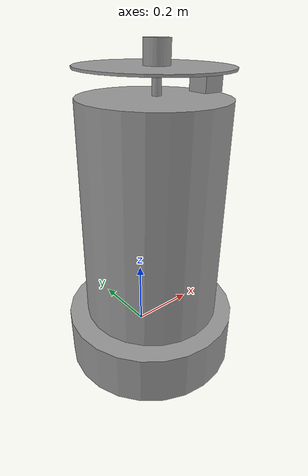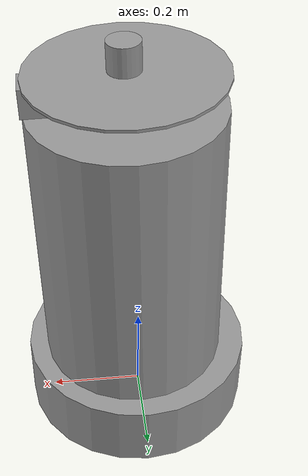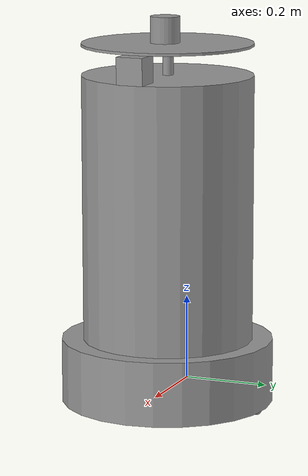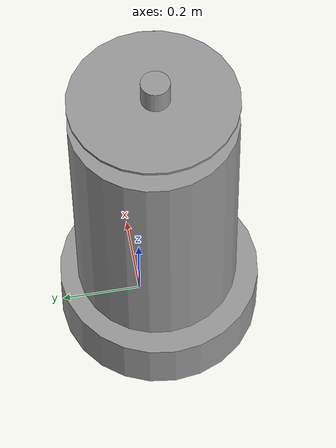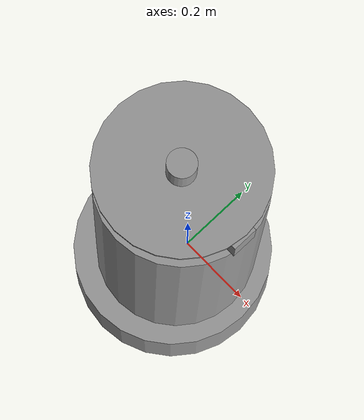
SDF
<?xml version='1.0'?>
<sdf version='1.7'>
  <model name='MapperBotConceptBase'>
    <link name='link_0'>
      <inertial>
        <mass>1</mass>
        <inertia>
          <ixx>0.0180645</ixx>
          <ixy>0</ixy>
          <ixz>0</ixz>
          <iyy>0.0180645</iyy>
          <iyz>0</iyz>
          <izz>0.032258</izz>
        </inertia>
        <pose>0 0 0 0 -0 0</pose>
      </inertial>
      <pose>-0.001605 -0.051689 0.019205 0 -0 0</pose>
      <gravity>1</gravity>
      <self_collide>0</self_collide>
      <kinematic>0</kinematic>
      <enable_wind>0</enable_wind>
      <visual name='visual'>
        <pose>0 0 0 0 -0 0</pose>
        <geometry>
          <cylinder>
            <radius>0.254</radius>
            <length>0.1524</length>
          </cylinder>
        </geometry>
        <material>
          <lighting>1</lighting>
          <script>
            <uri>file://media/materials/scripts/gazebo.material</uri>
            <name>Gazebo/Grey</name>
          </script>
          <shader type='pixel'>
            <normal_map>__default__</normal_map>
          </shader>
          <ambient>0.3 0.3 0.3 1</ambient>
          <diffuse>0.7 0.7 0.7 1</diffuse>
          <specular>0.01 0.01 0.01 1</specular>
          <emissive>0 0 0 1</emissive>
        </material>
        <transparency>0</transparency>
        <cast_shadows>1</cast_shadows>
      </visual>
      <collision name='collision'>
        <laser_retro>0</laser_retro>
        <max_contacts>10</max_contacts>
        <pose>0 0 0 0 -0 0</pose>
        <geometry>
          <cylinder>
            <radius>0.254</radius>
            <length>0.1524</length>
          </cylinder>
        </geometry>
        <surface>
          <friction>
            <ode>
              <mu>1</mu>
              <mu2>1</mu2>
              <fdir1>0 0 0</fdir1>
              <slip1>0</slip1>
              <slip2>0</slip2>
            </ode>
            <torsional>
              <coefficient>1</coefficient>
              <patch_radius>0</patch_radius>
              <surface_radius>0</surface_radius>
              <use_patch_radius>1</use_patch_radius>
              <ode>
                <slip>0</slip>
              </ode>
            </torsional>
          </friction>
          <bounce>
            <restitution_coefficient>0</restitution_coefficient>
            <threshold>1e+06</threshold>
          </bounce>
          <contact>
            <collide_without_contact>0</collide_without_contact>
            <collide_without_contact_bitmask>1</collide_without_contact_bitmask>
            <collide_bitmask>1</collide_bitmask>
            <ode>
              <soft_cfm>0</soft_cfm>
              <soft_erp>0.2</soft_erp>
              <kp>1e+13</kp>
              <kd>1</kd>
              <max_vel>0.01</max_vel>
              <min_depth>0</min_depth>
            </ode>
            <bullet>
              <split_impulse>1</split_impulse>
              <split_impulse_penetration_threshold>-0.01</split_impulse_penetration_threshold>
              <soft_cfm>0</soft_cfm>
              <soft_erp>0.2</soft_erp>
              <kp>1e+13</kp>
              <kd>1</kd>
            </bullet>
          </contact>
        </surface>
      </collision>
    </link>
    <link name='link_0_0'>
      <inertial>
        <mass>0.00461805</mass>
        <inertia>
          <ixx>1.281e-05</ixx>
          <ixy>0</ixy>
          <ixz>0</ixz>
          <iyy>1.281e-05</iyy>
          <iyz>0</iyz>
          <izz>1.281e-05</izz>
        </inertia>
        <pose>0 0 0 0 -0 0</pose>
      </inertial>
      <pose>-0.166726 -0.045065 0.012807 0.000165 0.058306 -0.025085</pose>
      <gravity>1</gravity>
      <self_collide>0</self_collide>
      <kinematic>0</kinematic>
      <enable_wind>0</enable_wind>
      <visual name='visual'>
        <pose>0 0 0 0 -0 0</pose>
        <geometry>
          <sphere>
            <radius>0.0832668</radius>
          </sphere>
        </geometry>
        <material>
          <lighting>1</lighting>
          <script>
            <uri>file://media/materials/scripts/gazebo.material</uri>
            <name>Gazebo/Grey</name>
          </script>
          <shader type='pixel'>
            <normal_map>__default__</normal_map>
          </shader>
          <ambient>0.3 0.3 0.3 1</ambient>
          <diffuse>0.7 0.7 0.7 1</diffuse>
          <specular>0.01 0.01 0.01 1</specular>
          <emissive>0 0 0 1</emissive>
        </material>
        <transparency>0</transparency>
        <cast_shadows>1</cast_shadows>
      </visual>
      <collision name='collision'>
        <laser_retro>0</laser_retro>
        <max_contacts>10</max_contacts>
        <pose>0 0 0 0 -0 0</pose>
        <geometry>
          <sphere>
            <radius>0.083267</radius>
          </sphere>
        </geometry>
        <surface>
          <friction>
            <ode>
              <mu>1</mu>
              <mu2>1</mu2>
              <fdir1>0 0 0</fdir1>
              <slip1>0</slip1>
              <slip2>0</slip2>
            </ode>
            <torsional>
              <coefficient>1</coefficient>
              <patch_radius>0</patch_radius>
              <surface_radius>0</surface_radius>
              <use_patch_radius>1</use_patch_radius>
              <ode>
                <slip>0</slip>
              </ode>
            </torsional>
          </friction>
          <bounce>
            <restitution_coefficient>0</restitution_coefficient>
            <threshold>1e+06</threshold>
          </bounce>
          <contact>
            <collide_without_contact>0</collide_without_contact>
            <collide_without_contact_bitmask>1</collide_without_contact_bitmask>
            <collide_bitmask>1</collide_bitmask>
            <ode>
              <soft_cfm>0</soft_cfm>
              <soft_erp>0.2</soft_erp>
              <kp>1e+13</kp>
              <kd>1</kd>
              <max_vel>0.01</max_vel>
              <min_depth>0</min_depth>
            </ode>
            <bullet>
              <split_impulse>1</split_impulse>
              <split_impulse_penetration_threshold>-0.01</split_impulse_penetration_threshold>
              <soft_cfm>0</soft_cfm>
              <soft_erp>0.2</soft_erp>
              <kp>1e+13</kp>
              <kd>1</kd>
            </bullet>
          </contact>
        </surface>
      </collision>
    </link>
    <link name='link_0_1'>
      <inertial>
        <mass>0.837169</mass>
        <inertia>
          <ixx>0.0370318</ixx>
          <ixy>0</ixy>
          <ixz>0</ixz>
          <iyy>0.0370318</iyy>
          <iyz>0</iyz>
          <izz>0.0172834</izz>
        </inertia>
        <pose>0 0 0 0 -0 0</pose>
      </inertial>
      <pose>0.012461 -0.044778 0.411634 -0.007668 0.019791 0.007759</pose>
      <gravity>1</gravity>
      <self_collide>0</self_collide>
      <kinematic>0</kinematic>
      <enable_wind>0</enable_wind>
      <visual name='visual'>
        <pose>0 0 0 0 -0 0</pose>
        <geometry>
          <cylinder>
            <radius>0.2032</radius>
            <length>0.637922</length>
          </cylinder>
        </geometry>
        <material>
          <lighting>1</lighting>
          <script>
            <uri>file://media/materials/scripts/gazebo.material</uri>
            <name>Gazebo/Grey</name>
          </script>
          <shader type='pixel'>
            <normal_map>__default__</normal_map>
          </shader>
          <ambient>1 1 1 1</ambient>
          <diffuse>1 1 1 1</diffuse>
          <specular>0.01 0.01 0.01 1</specular>
          <emissive>0 0 0 1</emissive>
        </material>
        <transparency>0</transparency>
        <cast_shadows>1</cast_shadows>
      </visual>
      <collision name='collision'>
        <laser_retro>0</laser_retro>
        <max_contacts>10</max_contacts>
        <pose>0 0 0 0 -0 0</pose>
        <geometry>
          <cylinder>
            <radius>0.2032</radius>
            <length>0.637922</length>
          </cylinder>
        </geometry>
        <surface>
          <friction>
            <ode>
              <mu>1</mu>
              <mu2>1</mu2>
              <fdir1>0 0 0</fdir1>
              <slip1>0</slip1>
              <slip2>0</slip2>
            </ode>
            <torsional>
              <coefficient>1</coefficient>
              <patch_radius>0</patch_radius>
              <surface_radius>0</surface_radius>
              <use_patch_radius>1</use_patch_radius>
              <ode>
                <slip>0</slip>
              </ode>
            </torsional>
          </friction>
          <bounce>
            <restitution_coefficient>0</restitution_coefficient>
            <threshold>1e+06</threshold>
          </bounce>
          <contact>
            <collide_without_contact>0</collide_without_contact>
            <collide_without_contact_bitmask>1</collide_without_contact_bitmask>
            <collide_bitmask>1</collide_bitmask>
            <ode>
              <soft_cfm>0</soft_cfm>
              <soft_erp>0.2</soft_erp>
              <kp>1e+13</kp>
              <kd>1</kd>
              <max_vel>0.01</max_vel>
              <min_depth>0</min_depth>
            </ode>
            <bullet>
              <split_impulse>1</split_impulse>
              <split_impulse_penetration_threshold>-0.01</split_impulse_penetration_threshold>
              <soft_cfm>0</soft_cfm>
              <soft_erp>0.2</soft_erp>
              <kp>1e+13</kp>
              <kd>1</kd>
            </bullet>
          </contact>
        </surface>
      </collision>
    </link>
    <link name='link_0_2'>
      <inertial>
        <mass>1</mass>
        <inertia>
          <ixx>0.145833</ixx>
          <ixy>0</ixy>
          <ixz>0</ixz>
          <iyy>0.145833</iyy>
          <iyz>0</iyz>
          <izz>0.125</izz>
        </inertia>
        <pose>0 0 0 0 -0 0</pose>
      </inertial>
      <pose>0.019026 -0.042306 0.802062 0.008829 0.019605 0.7768</pose>
      <gravity>1</gravity>
      <self_collide>0</self_collide>
      <kinematic>0</kinematic>
      <enable_wind>0</enable_wind>
      <visual name='visual'>
        <pose>0 0 0 0 -0 0</pose>
        <geometry>
          <cylinder>
            <radius>0.2032</radius>
            <length>0.00635</length>
          </cylinder>
        </geometry>
        <material>
          <lighting>1</lighting>
          <script>
            <uri>file://media/materials/scripts/gazebo.material</uri>
            <name>Gazebo/Grey</name>
          </script>
          <shader type='pixel'>
            <normal_map>__default__</normal_map>
          </shader>
          <ambient>1 1 1 1</ambient>
          <diffuse>0.7 0.7 0.7 1</diffuse>
          <specular>0.01 0.01 0.01 1</specular>
          <emissive>0 0 0 1</emissive>
        </material>
        <transparency>0</transparency>
        <cast_shadows>1</cast_shadows>
      </visual>
      <collision name='collision'>
        <laser_retro>0</laser_retro>
        <max_contacts>10</max_contacts>
        <pose>0 0 0 0 -0 0</pose>
        <geometry>
          <cylinder>
            <radius>0.2032</radius>
            <length>0.00635</length>
          </cylinder>
        </geometry>
        <surface>
          <friction>
            <ode>
              <mu>1</mu>
              <mu2>1</mu2>
              <fdir1>0 0 0</fdir1>
              <slip1>0</slip1>
              <slip2>0</slip2>
            </ode>
            <torsional>
              <coefficient>1</coefficient>
              <patch_radius>0</patch_radius>
              <surface_radius>0</surface_radius>
              <use_patch_radius>1</use_patch_radius>
              <ode>
                <slip>0</slip>
              </ode>
            </torsional>
          </friction>
          <bounce>
            <restitution_coefficient>0</restitution_coefficient>
            <threshold>1e+06</threshold>
          </bounce>
          <contact>
            <collide_without_contact>0</collide_without_contact>
            <collide_without_contact_bitmask>1</collide_without_contact_bitmask>
            <collide_bitmask>1</collide_bitmask>
            <ode>
              <soft_cfm>0</soft_cfm>
              <soft_erp>0.2</soft_erp>
              <kp>1e+13</kp>
              <kd>1</kd>
              <max_vel>0.01</max_vel>
              <min_depth>0</min_depth>
            </ode>
            <bullet>
              <split_impulse>1</split_impulse>
              <split_impulse_penetration_threshold>-0.01</split_impulse_penetration_threshold>
              <soft_cfm>0</soft_cfm>
              <soft_erp>0.2</soft_erp>
              <kp>1e+13</kp>
              <kd>1</kd>
            </bullet>
          </contact>
        </surface>
      </collision>
    </link>
    <link name='link_0_3'>
      <inertial>
        <mass>1</mass>
        <inertia>
          <ixx>0.145833</ixx>
          <ixy>0</ixy>
          <ixz>0</ixz>
          <iyy>0.145833</iyy>
          <iyz>0</iyz>
          <izz>0.125</izz>
        </inertia>
        <pose>0 0 0 0 -0 0</pose>
      </inertial>
      <pose>0.022269 -0.047603 0.835541 -0.005274 0.021336 0.074371</pose>
      <gravity>1</gravity>
      <self_collide>0</self_collide>
      <kinematic>0</kinematic>
      <enable_wind>0</enable_wind>
      <visual name='visual'>
        <pose>0 0 0 0 -0 0</pose>
        <geometry>
          <cylinder>
            <radius>0.034925</radius>
            <length>0.0635</length>
          </cylinder>
        </geometry>
        <material>
          <lighting>1</lighting>
          <script>
            <uri>file://media/materials/scripts/gazebo.material</uri>
            <name>Gazebo/Grey</name>
          </script>
          <shader type='pixel'>
            <normal_map>__default__</normal_map>
          </shader>
          <ambient>0.3 0.3 0.3 1</ambient>
          <diffuse>0.7 0.7 0.7 1</diffuse>
          <specular>0.01 0.01 0.01 1</specular>
          <emissive>0 0 0 1</emissive>
        </material>
        <transparency>0</transparency>
        <cast_shadows>1</cast_shadows>
      </visual>
      <collision name='collision'>
        <laser_retro>0</laser_retro>
        <max_contacts>10</max_contacts>
        <pose>0 0 0 0 -0 0</pose>
        <geometry>
          <cylinder>
            <radius>0.034925</radius>
            <length>0.0635</length>
          </cylinder>
        </geometry>
        <surface>
          <friction>
            <ode>
              <mu>1</mu>
              <mu2>1</mu2>
              <fdir1>0 0 0</fdir1>
              <slip1>0</slip1>
              <slip2>0</slip2>
            </ode>
            <torsional>
              <coefficient>1</coefficient>
              <patch_radius>0</patch_radius>
              <surface_radius>0</surface_radius>
              <use_patch_radius>1</use_patch_radius>
              <ode>
                <slip>0</slip>
              </ode>
            </torsional>
          </friction>
          <bounce>
            <restitution_coefficient>0</restitution_coefficient>
            <threshold>1e+06</threshold>
          </bounce>
          <contact>
            <collide_without_contact>0</collide_without_contact>
            <collide_without_contact_bitmask>1</collide_without_contact_bitmask>
            <collide_bitmask>1</collide_bitmask>
            <ode>
              <soft_cfm>0</soft_cfm>
              <soft_erp>0.2</soft_erp>
              <kp>1e+13</kp>
              <kd>1</kd>
              <max_vel>0.01</max_vel>
              <min_depth>0</min_depth>
            </ode>
            <bullet>
              <split_impulse>1</split_impulse>
              <split_impulse_penetration_threshold>-0.01</split_impulse_penetration_threshold>
              <soft_cfm>0</soft_cfm>
              <soft_erp>0.2</soft_erp>
              <kp>1e+13</kp>
              <kd>1</kd>
            </bullet>
          </contact>
        </surface>
      </collision>
    </link>
    <link name='link_1'>
      <inertial>
        <mass>1</mass>
        <inertia>
          <ixx>0.145833</ixx>
          <ixy>0</ixy>
          <ixz>0</ixz>
          <iyy>0.145833</iyy>
          <iyz>0</iyz>
          <izz>0.125</izz>
        </inertia>
        <pose>0 0 0 0 -0 0</pose>
      </inertial>
      <pose>0.001605 0.061689 -0.019205 -1.58301 0 0</pose>
      <gravity>1</gravity>
      <self_collide>0</self_collide>
      <kinematic>0</kinematic>
      <enable_wind>0</enable_wind>
      <visual name='visual'>
        <pose>0 0 0.1 0 -0 0</pose>
        <geometry>
          <cylinder>
            <radius>0.0508</radius>
            <length>0.0508</length>
          </cylinder>
        </geometry>
        <material>
          <lighting>1</lighting>
          <script>
            <uri>file://media/materials/scripts/gazebo.material</uri>
            <name>Gazebo/Grey</name>
          </script>
          <shader type='pixel'>
            <normal_map>__default__</normal_map>
          </shader>
          <ambient>0.3 0.3 0.3 1</ambient>
          <diffuse>0.7 0.7 0.7 1</diffuse>
          <specular>0.01 0.01 0.01 1</specular>
          <emissive>0 0 0 1</emissive>
        </material>
        <transparency>0</transparency>
        <cast_shadows>1</cast_shadows>
      </visual>
      <collision name='collision'>
        <laser_retro>0</laser_retro>
        <max_contacts>10</max_contacts>
        <pose>0 0 0.1 0 -0 0</pose>
        <geometry>
          <cylinder>
            <radius>0.0508</radius>
            <length>0.0508</length>
          </cylinder>
        </geometry>
        <surface>
          <friction>
            <ode>
              <mu>1</mu>
              <mu2>1</mu2>
              <fdir1>0 0 0</fdir1>
              <slip1>0</slip1>
              <slip2>0</slip2>
            </ode>
            <torsional>
              <coefficient>1</coefficient>
              <patch_radius>0</patch_radius>
              <surface_radius>0</surface_radius>
              <use_patch_radius>1</use_patch_radius>
              <ode>
                <slip>0</slip>
              </ode>
            </torsional>
          </friction>
          <bounce>
            <restitution_coefficient>0</restitution_coefficient>
            <threshold>1e+06</threshold>
          </bounce>
          <contact>
            <collide_without_contact>0</collide_without_contact>
            <collide_without_contact_bitmask>1</collide_without_contact_bitmask>
            <collide_bitmask>1</collide_bitmask>
            <ode>
              <soft_cfm>0</soft_cfm>
              <soft_erp>0.2</soft_erp>
              <kp>1e+13</kp>
              <kd>1</kd>
              <max_vel>0.01</max_vel>
              <min_depth>0</min_depth>
            </ode>
            <bullet>
              <split_impulse>1</split_impulse>
              <split_impulse_penetration_threshold>-0.01</split_impulse_penetration_threshold>
              <soft_cfm>0</soft_cfm>
              <soft_erp>0.2</soft_erp>
              <kp>1e+13</kp>
              <kd>1</kd>
            </bullet>
          </contact>
        </surface>
      </collision>
    </link>
    <link name='link_1_0'>
      <inertial>
        <mass>1</mass>
        <inertia>
          <ixx>0.1</ixx>
          <ixy>0</ixy>
          <ixz>0</ixz>
          <iyy>0.1</iyy>
          <iyz>0</iyz>
          <izz>0.1</izz>
        </inertia>
        <pose>0 0 0 0 -0 0</pose>
      </inertial>
      <pose>0.161614 -0.052212 0.006595 0.000165 0.058306 -0.025085</pose>
      <gravity>1</gravity>
      <self_collide>0</self_collide>
      <kinematic>0</kinematic>
      <enable_wind>0</enable_wind>
      <visual name='visual'>
        <pose>0 0 0 0 -0 0</pose>
        <geometry>
          <sphere>
            <radius>0.083267</radius>
          </sphere>
        </geometry>
        <material>
          <lighting>1</lighting>
          <script>
            <uri>file://media/materials/scripts/gazebo.material</uri>
            <name>Gazebo/Grey</name>
          </script>
          <shader type='pixel'>
            <normal_map>__default__</normal_map>
          </shader>
          <ambient>0.3 0.3 0.3 1</ambient>
          <diffuse>0.7 0.7 0.7 1</diffuse>
          <specular>0.01 0.01 0.01 1</specular>
          <emissive>0 0 0 1</emissive>
        </material>
        <transparency>0</transparency>
        <cast_shadows>1</cast_shadows>
      </visual>
      <collision name='collision'>
        <laser_retro>0</laser_retro>
        <max_contacts>10</max_contacts>
        <pose>0 0 0 0 -0 0</pose>
        <geometry>
          <sphere>
            <radius>0.083267</radius>
          </sphere>
        </geometry>
        <surface>
          <friction>
            <ode>
              <mu>1</mu>
              <mu2>1</mu2>
              <fdir1>0 0 0</fdir1>
              <slip1>0</slip1>
              <slip2>0</slip2>
            </ode>
            <torsional>
              <coefficient>1</coefficient>
              <patch_radius>0</patch_radius>
              <surface_radius>0</surface_radius>
              <use_patch_radius>1</use_patch_radius>
              <ode>
                <slip>0</slip>
              </ode>
            </torsional>
          </friction>
          <bounce>
            <restitution_coefficient>0</restitution_coefficient>
            <threshold>1e+06</threshold>
          </bounce>
          <contact>
            <collide_without_contact>0</collide_without_contact>
            <collide_without_contact_bitmask>1</collide_without_contact_bitmask>
            <collide_bitmask>1</collide_bitmask>
            <ode>
              <soft_cfm>0</soft_cfm>
              <soft_erp>0.2</soft_erp>
              <kp>1e+13</kp>
              <kd>1</kd>
              <max_vel>0.01</max_vel>
              <min_depth>0</min_depth>
            </ode>
            <bullet>
              <split_impulse>1</split_impulse>
              <split_impulse_penetration_threshold>-0.01</split_impulse_penetration_threshold>
              <soft_cfm>0</soft_cfm>
              <soft_erp>0.2</soft_erp>
              <kp>1e+13</kp>
              <kd>1</kd>
            </bullet>
          </contact>
        </surface>
      </collision>
    </link>
    <link name='link_1_1'>
      <inertial>
        <mass>1</mass>
        <inertia>
          <ixx>0.145833</ixx>
          <ixy>0</ixy>
          <ixz>0</ixz>
          <iyy>0.145833</iyy>
          <iyz>0</iyz>
          <izz>0.125</izz>
        </inertia>
        <pose>0 0 0 0 -0 0</pose>
      </inertial>
      <pose>0.03166 -0.036306 0.769704 0.008829 0.019605 0.7768</pose>
      <gravity>1</gravity>
      <self_collide>0</self_collide>
      <kinematic>0</kinematic>
      <enable_wind>0</enable_wind>
      <visual name='visual'>
        <pose>0 0 0 0 -0 0</pose>
        <geometry>
          <cylinder>
            <radius>0.0127</radius>
            <length>0.0762</length>
          </cylinder>
        </geometry>
        <material>
          <lighting>1</lighting>
          <script>
            <uri>file://media/materials/scripts/gazebo.material</uri>
            <name>Gazebo/Grey</name>
          </script>
          <shader type='pixel'>
            <normal_map>__default__</normal_map>
          </shader>
          <ambient>0.3 0.3 0.3 1</ambient>
          <diffuse>0.7 0.7 0.7 1</diffuse>
          <specular>0.01 0.01 0.01 1</specular>
          <emissive>0 0 0 1</emissive>
        </material>
        <transparency>0</transparency>
        <cast_shadows>1</cast_shadows>
      </visual>
      <collision name='collision'>
        <laser_retro>0</laser_retro>
        <max_contacts>10</max_contacts>
        <pose>0 0 0 0 -0 0</pose>
        <geometry>
          <cylinder>
            <radius>0.0127</radius>
            <length>0.0762</length>
          </cylinder>
        </geometry>
        <surface>
          <friction>
            <ode>
              <mu>1</mu>
              <mu2>1</mu2>
              <fdir1>0 0 0</fdir1>
              <slip1>0</slip1>
              <slip2>0</slip2>
            </ode>
            <torsional>
              <coefficient>1</coefficient>
              <patch_radius>0</patch_radius>
              <surface_radius>0</surface_radius>
              <use_patch_radius>1</use_patch_radius>
              <ode>
                <slip>0</slip>
              </ode>
            </torsional>
          </friction>
          <bounce>
            <restitution_coefficient>0</restitution_coefficient>
            <threshold>1e+06</threshold>
          </bounce>
          <contact>
            <collide_without_contact>0</collide_without_contact>
            <collide_without_contact_bitmask>1</collide_without_contact_bitmask>
            <collide_bitmask>1</collide_bitmask>
            <ode>
              <soft_cfm>0</soft_cfm>
              <soft_erp>0.2</soft_erp>
              <kp>1e+13</kp>
              <kd>1</kd>
              <max_vel>0.01</max_vel>
              <min_depth>0</min_depth>
            </ode>
            <bullet>
              <split_impulse>1</split_impulse>
              <split_impulse_penetration_threshold>-0.01</split_impulse_penetration_threshold>
              <soft_cfm>0</soft_cfm>
              <soft_erp>0.2</soft_erp>
              <kp>1e+13</kp>
              <kd>1</kd>
            </bullet>
          </contact>
        </surface>
      </collision>
    </link>
    <link name='link_1_clone'>
      <inertial>
        <mass>1</mass>
        <inertia>
          <ixx>0.145833</ixx>
          <ixy>0</ixy>
          <ixz>0</ixz>
          <iyy>0.145833</iyy>
          <iyz>0</iyz>
          <izz>0.125</izz>
        </inertia>
        <pose>0 0 0 0 -0 0</pose>
      </inertial>
      <pose>-0.003507 -0.266346 -0.02078 1.55659 -0 0</pose>
      <gravity>1</gravity>
      <self_collide>0</self_collide>
      <kinematic>0</kinematic>
      <enable_wind>0</enable_wind>
      <visual name='visual'>
        <pose>0 0 0 0 -0 0</pose>
        <geometry>
          <cylinder>
            <radius>0.0508</radius>
            <length>0.0508</length>
          </cylinder>
        </geometry>
        <material>
          <lighting>1</lighting>
          <script>
            <uri>file://media/materials/scripts/gazebo.material</uri>
            <name>Gazebo/Grey</name>
          </script>
          <shader type='pixel'>
            <normal_map>__default__</normal_map>
          </shader>
          <ambient>0.3 0.3 0.3 1</ambient>
          <diffuse>0.7 0.7 0.7 1</diffuse>
          <specular>0.01 0.01 0.01 1</specular>
          <emissive>0 0 0 1</emissive>
        </material>
        <transparency>0</transparency>
        <cast_shadows>1</cast_shadows>
      </visual>
      <collision name='collision'>
        <laser_retro>0</laser_retro>
        <max_contacts>10</max_contacts>
        <pose>0 0 0 0 -0 0</pose>
        <geometry>
          <cylinder>
            <radius>0.0508</radius>
            <length>0.0508</length>
          </cylinder>
        </geometry>
        <surface>
          <friction>
            <ode>
              <mu>1</mu>
              <mu2>1</mu2>
              <fdir1>0 0 0</fdir1>
              <slip1>0</slip1>
              <slip2>0</slip2>
            </ode>
            <torsional>
              <coefficient>1</coefficient>
              <patch_radius>0</patch_radius>
              <surface_radius>0</surface_radius>
              <use_patch_radius>1</use_patch_radius>
              <ode>
                <slip>0</slip>
              </ode>
            </torsional>
          </friction>
          <bounce>
            <restitution_coefficient>0</restitution_coefficient>
            <threshold>1e+06</threshold>
          </bounce>
          <contact>
            <collide_without_contact>0</collide_without_contact>
            <collide_without_contact_bitmask>1</collide_without_contact_bitmask>
            <collide_bitmask>1</collide_bitmask>
            <ode>
              <soft_cfm>0</soft_cfm>
              <soft_erp>0.2</soft_erp>
              <kp>1e+13</kp>
              <kd>1</kd>
              <max_vel>0.01</max_vel>
              <min_depth>0</min_depth>
            </ode>
            <bullet>
              <split_impulse>1</split_impulse>
              <split_impulse_penetration_threshold>-0.01</split_impulse_penetration_threshold>
              <soft_cfm>0</soft_cfm>
              <soft_erp>0.2</soft_erp>
              <kp>1e+13</kp>
              <kd>1</kd>
            </bullet>
          </contact>
        </surface>
      </collision>
    </link>
    <link name='link_2'>
      <inertial>
        <mass>1</mass>
        <inertia>
          <ixx>0.166667</ixx>
          <ixy>0</ixy>
          <ixz>0</ixz>
          <iyy>0.166667</iyy>
          <iyz>0</iyz>
          <izz>0.166667</izz>
        </inertia>
        <pose>0 0 0 0 -0 0</pose>
      </inertial>
      <pose>0.194235 -0.051204 0.759107 -0.006886 0.020871 -0.001997</pose>
      <gravity>1</gravity>
      <self_collide>0</self_collide>
      <kinematic>0</kinematic>
      <enable_wind>0</enable_wind>
      <visual name='visual'>
        <pose>0 0 0 0 -0 0</pose>
        <geometry>
          <box>
            <size>0.0635 0.0635 0.0635</size>
          </box>
        </geometry>
        <material>
          <lighting>1</lighting>
          <script>
            <uri>file://media/materials/scripts/gazebo.material</uri>
            <name>Gazebo/Grey</name>
          </script>
          <shader type='pixel'>
            <normal_map>__default__</normal_map>
          </shader>
          <ambient>0.3 0.3 0.3 1</ambient>
          <diffuse>0.7 0.7 0.7 1</diffuse>
          <specular>0.01 0.01 0.01 1</specular>
          <emissive>0 0 0 1</emissive>
        </material>
        <transparency>0</transparency>
        <cast_shadows>1</cast_shadows>
      </visual>
      <collision name='collision'>
        <laser_retro>0</laser_retro>
        <max_contacts>10</max_contacts>
        <pose>0 0 0 0 -0 0</pose>
        <geometry>
          <box>
            <size>0.0635 0.0635 0.0635</size>
          </box>
        </geometry>
        <surface>
          <friction>
            <ode>
              <mu>1</mu>
              <mu2>1</mu2>
              <fdir1>0 0 0</fdir1>
              <slip1>0</slip1>
              <slip2>0</slip2>
            </ode>
            <torsional>
              <coefficient>1</coefficient>
              <patch_radius>0</patch_radius>
              <surface_radius>0</surface_radius>
              <use_patch_radius>1</use_patch_radius>
              <ode>
                <slip>0</slip>
              </ode>
            </torsional>
          </friction>
          <bounce>
            <restitution_coefficient>0</restitution_coefficient>
            <threshold>1e+06</threshold>
          </bounce>
          <contact>
            <collide_without_contact>0</collide_without_contact>
            <collide_without_contact_bitmask>1</collide_without_contact_bitmask>
            <collide_bitmask>1</collide_bitmask>
            <ode>
              <soft_cfm>0</soft_cfm>
              <soft_erp>0.2</soft_erp>
              <kp>1e+13</kp>
              <kd>1</kd>
              <max_vel>0.01</max_vel>
              <min_depth>0</min_depth>
            </ode>
            <bullet>
              <split_impulse>1</split_impulse>
              <split_impulse_penetration_threshold>-0.01</split_impulse_penetration_threshold>
              <soft_cfm>0</soft_cfm>
              <soft_erp>0.2</soft_erp>
              <kp>1e+13</kp>
              <kd>1</kd>
            </bullet>
          </contact>
        </surface>
      </collision>
    </link>
    <joint name='link_body_kneck' type='fixed'>
      <parent>link_0_1</parent>
      <child>link_1_1</child>
      <pose>0 0 0 0 -0 0</pose>
      <physics>
        <ode>
          <limit>
            <cfm>0</cfm>
            <erp>0.2</erp>
          </limit>
          <suspension>
            <cfm>0</cfm>
            <erp>0.2</erp>
          </suspension>
        </ode>
      </physics>
    </joint>
    <joint name='link_camera' type='fixed'>
      <parent>link_0_1</parent>
      <child>link_2</child>
      <pose>0 0 0 0 -0 0</pose>
      <physics>
        <ode>
          <limit>
            <cfm>0</cfm>
            <erp>0.2</erp>
          </limit>
          <suspension>
            <cfm>0</cfm>
            <erp>0.2</erp>
          </suspension>
        </ode>
      </physics>
    </joint>
    <joint name='link_lidar' type='fixed'>
      <parent>link_0_2</parent>
      <child>link_0_3</child>
      <pose>0 0 0 0 -0 0</pose>
      <physics>
        <ode>
          <limit>
            <cfm>0</cfm>
            <erp>0.2</erp>
          </limit>
          <suspension>
            <cfm>0</cfm>
            <erp>0.2</erp>
          </suspension>
        </ode>
      </physics>
    </joint>
    <joint name='link_kneck_head' type='fixed'>
      <parent>link_0_2</parent>
      <child>link_1_1</child>
      <pose>0 0 0 0 -0 0</pose>
      <physics>
        <ode>
          <limit>
            <cfm>0</cfm>
            <erp>0.2</erp>
          </limit>
          <suspension>
            <cfm>0</cfm>
            <erp>0.2</erp>
          </suspension>
        </ode>
      </physics>
    </joint>
    <joint name='link_0_JOINT_1' type='fixed'>
      <parent>link_0</parent>
      <child>link_0_1</child>
      <pose>0 0 0 0 -0 0</pose>
      <physics>
        <ode>
          <limit>
            <cfm>0</cfm>
            <erp>0.2</erp>
          </limit>
          <suspension>
            <cfm>0</cfm>
            <erp>0.2</erp>
          </suspension>
        </ode>
      </physics>
    </joint>
    <joint name='link_front_caster' type='ball'>
      <parent>link_0</parent>
      <child>link_1_0</child>
      <pose>0 0 0 0 -0 0</pose>
      <physics>
        <ode>
          <limit>
            <cfm>0</cfm>
            <erp>0.2</erp>
          </limit>
          <suspension>
            <cfm>0</cfm>
            <erp>0.2</erp>
          </suspension>
        </ode>
      </physics>
    </joint>
    <joint name='link_left_wheel' type='revolute'>
      <parent>link_0</parent>
      <child>link_1</child>
      <pose>0 0 0 0 -0 0</pose>
      <axis>
        <xyz>0 0 1</xyz>
        <limit>
          <lower>-1.79769e+308</lower>
          <upper>1.79769e+308</upper>
          <effort>-1</effort>
          <velocity>-1</velocity>
        </limit>
        <dynamics>
          <spring_reference>0</spring_reference>
          <spring_stiffness>0</spring_stiffness>
          <damping>0</damping>
          <friction>0</friction>
        </dynamics>
      </axis>
      <physics>
        <ode>
          <limit>
            <cfm>0</cfm>
            <erp>0.2</erp>
          </limit>
          <suspension>
            <cfm>0</cfm>
            <erp>0.2</erp>
          </suspension>
        </ode>
      </physics>
    </joint>
    <joint name='link_rear_caster' type='ball'>
      <parent>link_0</parent>
      <child>link_0_0</child>
      <pose>0 0 0 0 -0 0</pose>
      <physics>
        <ode>
          <limit>
            <cfm>0</cfm>
            <erp>0.2</erp>
          </limit>
          <suspension>
            <cfm>0</cfm>
            <erp>0.2</erp>
          </suspension>
        </ode>
      </physics>
    </joint>
    <joint name='link_right_wheel' type='revolute'>
      <parent>link_0</parent>
      <child>link_1_clone</child>
      <pose>0 0 0 0 -0 0</pose>
      <axis>
        <xyz>0 0 1</xyz>
        <limit>
          <lower>-1.79769e+308</lower>
          <upper>1.79769e+308</upper>
          <effort>-1</effort>
          <velocity>-1</velocity>
        </limit>
        <dynamics>
          <spring_reference>0</spring_reference>
          <spring_stiffness>0</spring_stiffness>
          <damping>0</damping>
          <friction>0</friction>
        </dynamics>
      </axis>
      <physics>
        <ode>
          <limit>
            <cfm>0</cfm>
            <erp>0.2</erp>
          </limit>
          <suspension>
            <cfm>0</cfm>
            <erp>0.2</erp>
          </suspension>
        </ode>
      </physics>
    </joint>
    <static>0</static>
    <allow_auto_disable>1</allow_auto_disable>
  </model>
</sdf>
